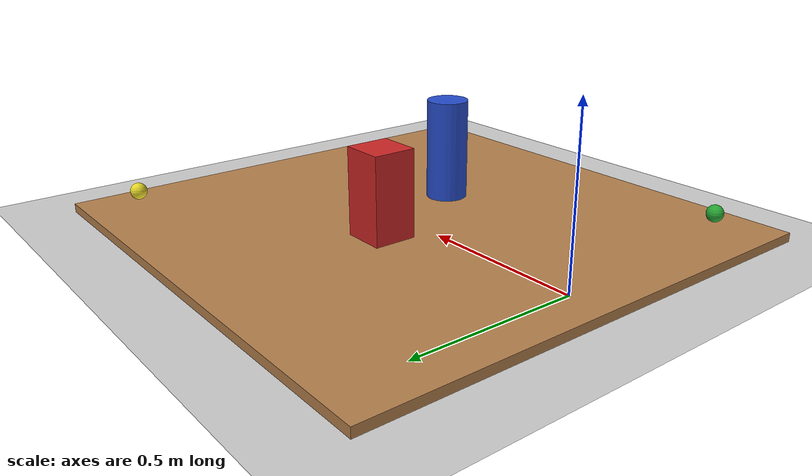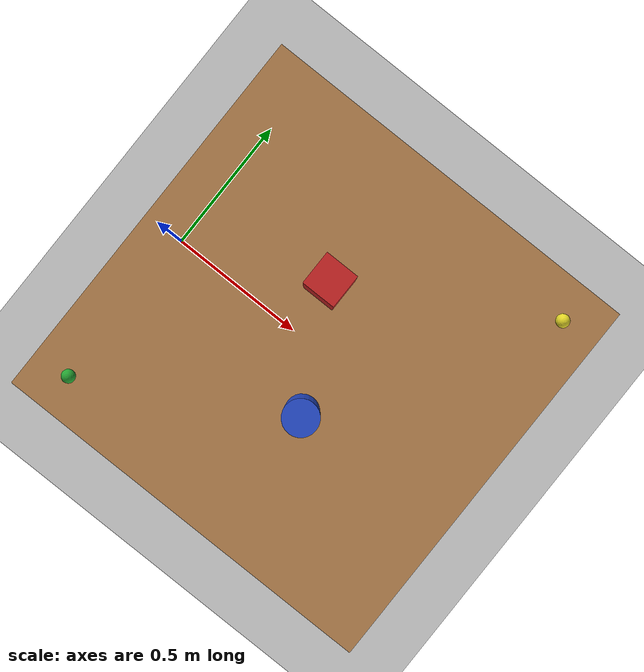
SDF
<?xml version="1.0" ?>
<sdf version="1.6">
  <world name="arm_obstacle_world">
    <!-- 设置物理引擎参数 -->
    <physics type="ode">
      <max_step_size>0.001</max_step_size>
      <real_time_factor>1</real_time_factor>
      <real_time_update_rate>1000</real_time_update_rate>
      <gravity>0 0 -9.81</gravity>
    </physics>

    <!-- 添加光源 -->
    <include>
      <uri>model://sun</uri>
    </include>

    <!-- 添加地面 -->
    <include>
      <uri>model://ground_plane</uri>
    </include>

    <!-- 添加桌子 -->
    <model name="table">
      <static>true</static>
      <pose>0.6 0 0 0 0 0</pose>
      <link name="link">
        <collision name="collision">
          <geometry>
            <box>
              <size>1.5 1.5 0.05</size>
            </box>
          </geometry>
        </collision>
        <visual name="visual">
          <geometry>
            <box>
              <size>1.5 1.5 0.05</size>
            </box>
          </geometry>
          <material>
            <script>
              <uri>file://media/materials/scripts/gazebo.material</uri>
              <name>Gazebo/Wood</name>
            </script>
          </material>
        </visual>
      </link>
    </model>

    <!-- 添加静态障碍物 - 立方体 -->
    <!-- 定义一个名为obstacle_box的静态障碍物模型，用于机械臂避障测试 -->
    <model name="obstacle_box">
      <!-- 设置为静态物体，不受物理引擎影响，固定在世界坐标系中 -->
      <static>true</static>
      <!-- 障碍物位置和姿态：x=0.5m, y=0.2m, z=0.175m（高度为立方体高度的一半） -->
      <!-- 旋转角度：roll=0, pitch=0, yaw=0（无旋转） -->
      <pose>0.5 0.2 0.175 0 0 0</pose>
      <link name="link">
        <!-- 碰撞检测几何体定义 -->
        <collision name="collision">
          <geometry>
            <!-- 立方体尺寸：长0.125m × 宽0.125m × 高0.25m -->
            <box>
              <size>0.125 0.125 0.25</size>
            </box>
          </geometry>
        </collision>
        <!-- 视觉显示几何体定义 -->
        <visual name="visual">
          <geometry>
            <!-- 视觉几何体与碰撞几何体保持一致 -->
            <box>
              <size>0.125 0.125 0.25</size>
            </box>
          </geometry>
          <!-- 材质设置：使用Gazebo预定义的红色材质 -->
          <material>
            <script>
              <uri>file://media/materials/scripts/gazebo.material</uri>
              <name>Gazebo/Red</name>
            </script>
          </material>
        </visual>
      </link>
    </model>

    <!-- 添加静态障碍物 - 圆柱体 -->
    <model name="obstacle_cylinder">
      <static>true</static>
      <pose>0.7 -0.2 0.175 0 0 0</pose>
      <link name="link">
        <collision name="collision">
          <geometry>
            <cylinder>
              <radius>0.0625</radius>
              <length>0.3125</length>
            </cylinder>
          </geometry>
        </collision>
        <visual name="visual">
          <geometry>
            <cylinder>
              <radius>0.0625</radius>
              <length>0.3125</length>
            </cylinder>
          </geometry>
          <material>
            <script>
              <uri>file://media/materials/scripts/gazebo.material</uri>
              <name>Gazebo/Blue</name>
            </script>
          </material>
        </visual>
      </link>
    </model>

    <!-- 添加起点标记 -->
    <model name="start_marker">
      <static>true</static>
      <pose>0.0 -0.6 0.075 0 0 0</pose>
      <link name="link">
        <visual name="visual">
          <geometry>
            <sphere>
              <radius>0.025</radius>
            </sphere>
          </geometry>
          <material>
            <script>
              <uri>file://media/materials/scripts/gazebo.material</uri>
              <name>Gazebo/Green</name>
            </script>
          </material>
        </visual>
      </link>
    </model>

    <!-- 添加终点标记 -->
    <model name="goal_marker">
      <static>true</static>
      <pose>1.2 0.6 0.075 0 0 0</pose>
      <link name="link">
        <visual name="visual">
          <geometry>
            <sphere>
              <radius>0.025</radius>
            </sphere>
          </geometry>
          <material>
            <script>
              <uri>file://media/materials/scripts/gazebo.material</uri>
              <name>Gazebo/Yellow</name>
            </script>
          </material>
        </visual>
      </link>
    </model>
  </world>
</sdf>
